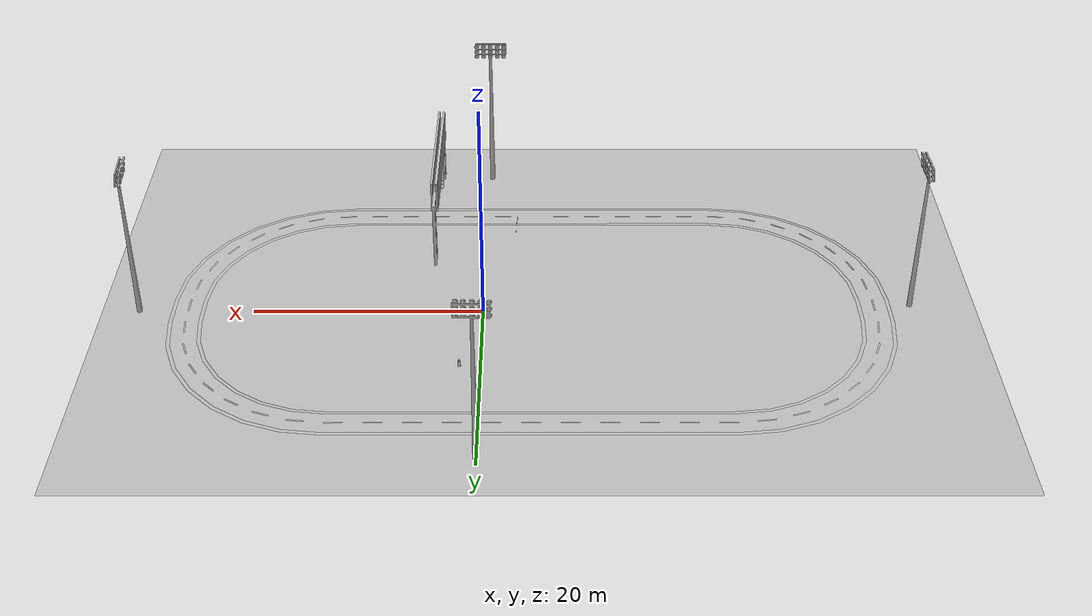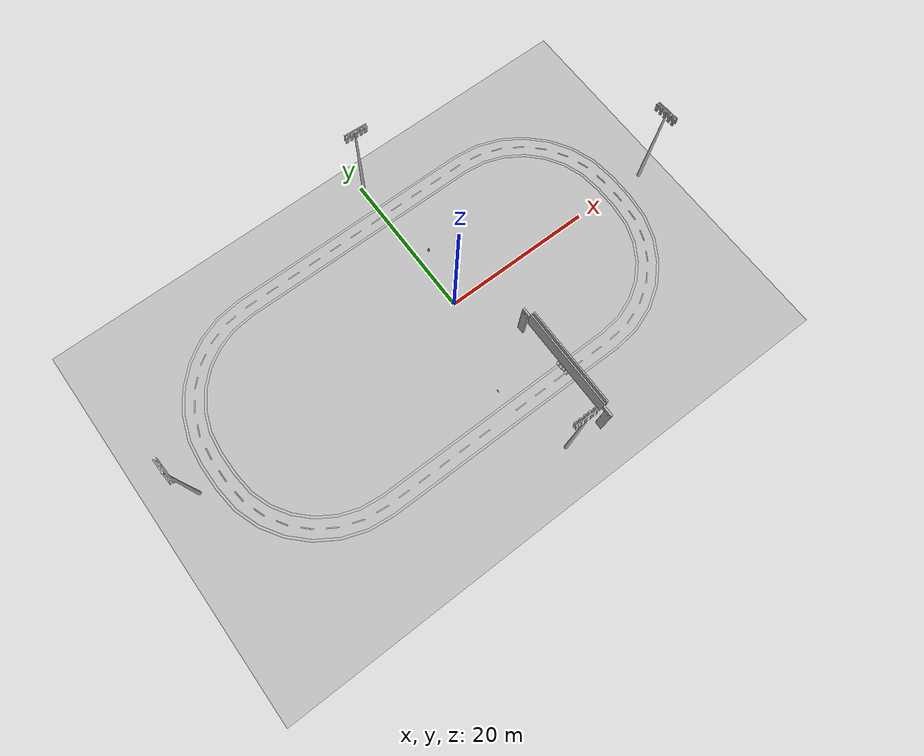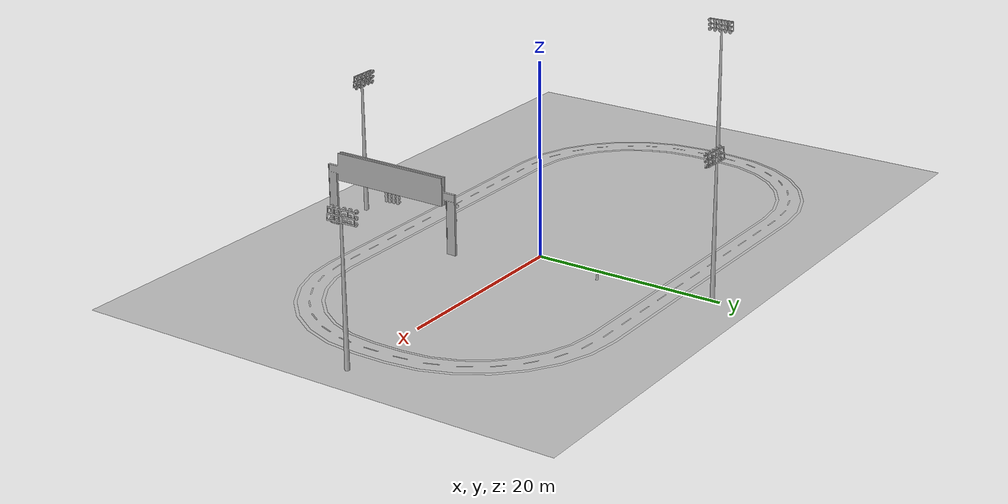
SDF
<sdf version="1.6">
 <world name="default">
  <gravity>0 0 -9.8</gravity>
  <magnetic_field>6e-06 2.3e-05 -4.2e-05</magnetic_field>
  <atmosphere type="adiabatic"/>
  <physics name="default_physics" default="0" type="ode">
   <max_step_size>0.001</max_step_size>
   <real_time_factor>1</real_time_factor>
   <real_time_update_rate>1000</real_time_update_rate>
  </physics>
  <scene><ambient>0.4 0.4 0.4 1</ambient><background>0.7 0.7 0.7 1</background><shadows>1</shadows></scene>
  <spherical_coordinates>
   <surface_model>EARTH_WGS84</surface_model>
   <latitude_deg>0</latitude_deg>
   <longitude_deg>0</longitude_deg>
   <elevation>0</elevation>
   <heading_deg>0</heading_deg>
  </spherical_coordinates>
  <model name="aws_robomaker_racetrack_TrafficCone_01_13">
   <include><uri>model://aws_robomaker_racetrack_TrafficCone_01</uri></include>
   <pose>1.78217 7.69024 0 0 -0 0</pose>
  </model>
  <model name="aws_robomaker_racetrack_Billboard_01">
   <include><uri>model://aws_robomaker_racetrack_Billboard_01</uri></include>
   <pose>4.32789 -14.8431 -2e-06 0 1e-06 1.56416</pose>
  </model>
  <model name="aws_robomaker_racetrack_RaceStartLight_01_00">
   <include><uri>model://aws_robomaker_racetrack_RaceStartLight_01</uri></include>
   <pose>4.13359 -14.1692 5.08709 0 -0 0</pose>
  </model>
  <model name="aws_robomaker_racetrack_RaceStartLight_01_01">
   <include><uri>model://aws_robomaker_racetrack_RaceStartLight_01</uri></include>
   <pose>4.14665 -14.6522 5.08709 0 -0 0</pose>
  </model>
  <model name="aws_robomaker_racetrack_RaceStartLight_01_02">
   <include><uri>model://aws_robomaker_racetrack_RaceStartLight_01</uri></include>
   <pose>4.21676 -15.0918 5.08709 0 -0 0</pose>
  </model>
  <model name="aws_robomaker_racetrack_RaceStartLight_01_03">
   <include><uri>model://aws_robomaker_racetrack_RaceStartLight_01</uri></include>
   <pose>4.17594 -15.5526 5.08709 0 -0 0</pose>
  </model>
  <model name="aws_robomaker_racetrack_StopSign_01_00">
   <include><uri>model://aws_robomaker_racetrack_StopSign_01</uri></include>
   <pose>-2.7487 -12.1054 0.000775 0.075944 0.005053 -1.56731</pose>
  </model>
  <model name="aws_robomaker_racetrack_Track_05_00">
   <include><uri>model://aws_robomaker_racetrack_Track_05</uri></include>
   <pose>0 0 0.02 0 -0 0</pose>
  </model>
  <model name="aws_robomaker_racetrack_Trackline_01_00">
   <include><uri>model://aws_robomaker_racetrack_Trackline_01</uri></include>
   <pose>-4.24539 0 0.102 0 -0 0</pose>
  </model>
  <model name="aws_robomaker_racetrack_Ground_01_00">
   <include><uri>model://aws_robomaker_racetrack_Ground_01</uri></include>
   <pose>-4.9 -2 0.05 0 -0 0</pose>
  </model>
  <model name="aws_robomaker_racetrack_Light_01_00">
   <include><uri>model://aws_robomaker_racetrack_Light_01</uri></include>
   <pose>-0.355802 -21.7691 0 0 -0 0</pose>
  </model>
  <model name="aws_robomaker_racetrack_Light_01_01">
   <include><uri>model://aws_robomaker_racetrack_Light_01</uri></include>
   <pose>0.041158 19.0887 0 0 -0 3.09146</pose>
  </model>
  <model name="aws_robomaker_racetrack_Light_01_02">
   <include><uri>model://aws_robomaker_racetrack_Light_01</uri></include>
   <pose>29.8469 -0.049215 0 0 -0 1.63215</pose>
  </model>
  <model name="aws_robomaker_racetrack_Light_01_03">
   <include><uri>model://aws_robomaker_racetrack_Light_01</uri></include>
   <pose>-37.2567 -0.808964 0 0 0 -1.52672</pose>
  </model>
  <model name="ground_plane">
   <pose>0 0 -1 0 -0 0</pose>
   <scale>1 1 1</scale>
   <link name="link">
    <pose>0 0 -1 0 -0 0</pose>
    <velocity>0 0 0 0 -0 0</velocity>
    <acceleration>0 0 0 0 -0 0</acceleration>
   </link>
  </model>
  <light name="sun" type="directional">
   <pose>0 0 10 0 0 0</pose>
   <diffuse>1 1 1 1</diffuse>
   <specular>1 1 1 1</specular>
   <attenuation>
    <range>1000</range>
    <constant>0.9</constant>
    <linear>0.01</linear>
    <quadratic>0.001</quadratic>
   </attenuation>
   <direction>-0.5 0.1 -0.9</direction>
  </light>
  <light name="sun2" type="directional">
   <pose>0 0 10 0 0 0</pose>
   <diffuse>1 1 1 1</diffuse>
   <specular>1 1 1 1</specular>
   <attenuation>
    <range>1000</range>
    <constant>0.9</constant>
    <linear>0.01</linear>
    <quadratic>0.001</quadratic>
   </attenuation>
   <direction>-0.5 0.1 -0.9</direction>
  </light>
  <light name="user_point_light_0" type="point">
   <pose>1.49278 -15.5363 1 0 -0 0</pose>
   <diffuse>0 0.98039 0 1</diffuse>
   <specular>0.1 0.1 0.1 1</specular>
   <attenuation>
    <range>0.3</range>
    <constant>0.02</constant>
    <linear>0.01</linear>
    <quadratic>0</quadratic>
   </attenuation>
   <cast_shadows>0</cast_shadows>
   <direction>0 0 -1</direction>
  </light>
  <light name="user_point_light_1" type="point">
   <pose>6.99411 -11.55 1 0 -0 0</pose>
   <diffuse>0 0.98039 0 1</diffuse>
   <specular>0.1 0.1 0.1 1</specular>
   <attenuation>
    <range>0.3</range>
    <constant>0.02</constant>
    <linear>0.01</linear>
    <quadratic>0</quadratic>
   </attenuation>
   <cast_shadows>0</cast_shadows>
   <direction>0 0 -1</direction>
  </light>
  <light name="user_point_light_2" type="point">
   <pose>5.65528 -14.8924 1 0 -0 0</pose>
   <diffuse>0 0.98039 0 1</diffuse>
   <specular>0.1 0.1 0.1 1</specular>
   <attenuation>
    <range>0.3</range>
    <constant>0.02</constant>
    <linear>0.01</linear>
    <quadratic>0</quadratic>
   </attenuation>
   <cast_shadows>0</cast_shadows>
   <direction>0 0 -1</direction>
  </light>
  <light name="user_point_light_3" type="point">
   <pose>3.6452 -17.3437 1 0 -0 0</pose>
   <diffuse>0 0.98039 0 1</diffuse>
   <specular>0.1 0.1 0.1 1</specular>
   <attenuation>
    <range>0.3</range>
    <constant>0.02</constant>
    <linear>0.01</linear>
    <quadratic>0</quadratic>
   </attenuation>
   <cast_shadows>0</cast_shadows>
   <direction>0 0 -1</direction>
  </light>
 </world>
</sdf>

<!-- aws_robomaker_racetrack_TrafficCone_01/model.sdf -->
<sdf version='1.6'>
  <model name='aws_TrafficCone_01'>
    <link name='body'>
      <pose frame=''>0 0 0 0 -0 0</pose>
      <self_collide>0</self_collide>
      <kinematic>0</kinematic>
      <gravity>1</gravity>
      <inertial>
        <mass>0.5</mass>
        <pose frame=''>0 0 0 0 -0 0</pose>
        <inertia>
          <ixx>1</ixx>
          <ixy>0</ixy>
          <ixz>0</ixz>
          <iyy>1</iyy>
          <iyz>0</iyz>
          <izz>1</izz>
        </inertia>
      </inertial>
      <visual name='visual'>
        <geometry>
          <mesh>
            <uri>file://models/aws_robomaker_racetrack_TrafficCone_01/meshes/aws_TrafficCone_01_visual.obj</uri>
            <scale>0.01 0.01 0.01</scale>
          </mesh>
        </geometry>
        <material>
          <shader type='pixel'>
            <normal_map>__default__</normal_map>
          </shader>
        </material>
        <pose frame=''>0 0 0 0 -0 0</pose>
        <cast_shadows>1</cast_shadows>
        <transparency>0</transparency>
        <meta>
          <layer>0</layer>
        </meta>
      </visual>
      <collision name='collision_0'>
        <laser_retro>0</laser_retro>
        <max_contacts>10</max_contacts>
        <pose frame=''>0 0 0 0 -0 0</pose>
        <geometry>
          <mesh>
            <uri>file://models/aws_robomaker_racetrack_TrafficCone_01/meshes/aws_TrafficCone_01_coliision.obj</uri>
            <scale>0.01 0.01 0.01</scale>
          </mesh>
        </geometry>
        <surface>
          <friction>
            <ode>
              <mu>1</mu>
              <mu2>1</mu2>
              <fdir1>0 0 0</fdir1>
              <slip1>0</slip1>
              <slip2>0</slip2>
            </ode>
            <torsional>
              <coefficient>1</coefficient>
              <patch_radius>0</patch_radius>
              <surface_radius>0</surface_radius>
              <use_patch_radius>1</use_patch_radius>
              <ode>
                <slip>0</slip>
              </ode>
            </torsional>
          </friction>
          <bounce>
            <restitution_coefficient>0</restitution_coefficient>
            <threshold>1e+06</threshold>
          </bounce>
          <contact>
            <collide_without_contact>0</collide_without_contact>
            <collide_without_contact_bitmask>1</collide_without_contact_bitmask>
            <collide_bitmask>1</collide_bitmask>
            <ode>
              <soft_cfm>0</soft_cfm>
              <soft_erp>0.2</soft_erp>
              <kp>1e+13</kp>
              <kd>1</kd>
              <max_vel>0.01</max_vel>
              <min_depth>0</min_depth>
            </ode>
            <bullet>
              <split_impulse>1</split_impulse>
              <split_impulse_penetration_threshold>-0.01</split_impulse_penetration_threshold>
              <soft_cfm>0</soft_cfm>
              <soft_erp>0.2</soft_erp>
              <kp>1e+13</kp>
              <kd>1</kd>
            </bullet>
          </contact>
        </surface>
      </collision>
    </link>
    <static>true</static>
  </model>
</sdf>

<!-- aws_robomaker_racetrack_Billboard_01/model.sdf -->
<sdf version='1.6'>
  <model name='aws_Billboard_01'>
    <link name='body'>
      <pose frame=''>0 0 0 0 -0 0</pose>
      <self_collide>0</self_collide>
      <kinematic>0</kinematic>
      <gravity>1</gravity>
      <inertial>
        <mass>1000</mass>
        <pose frame=''>0 0 0 0 -0 0</pose>
        <inertia>
          <ixx>1</ixx>
          <ixy>0</ixy>
          <ixz>0</ixz>
          <iyy>1</iyy>
          <iyz>0</iyz>
          <izz>1</izz>
        </inertia>
      </inertial>
      <visual name='visual'>
        <geometry>
          <mesh>
            <uri>models/aws_robomaker_racetrack_Billboard_01/meshes/aws_Billboard_01_visual.obj</uri>
            <scale>0.01 0.01 0.01</scale>
          </mesh>
        </geometry>
        <material>
          <shader type='pixel'>
            <normal_map>__default__</normal_map>
          </shader>
        </material>
        <pose frame=''>0 0 0 0 -0 0</pose>
        <cast_shadows>1</cast_shadows>
        <transparency>0</transparency>
        <meta>
          <layer>2</layer>
        </meta>
      </visual>

    </link>
    <static>true</static>
  </model>
</sdf>

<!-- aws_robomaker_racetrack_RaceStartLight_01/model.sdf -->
<sdf version='1.6'>
  <model name='aws_RaceStartLight_01'>
    <link name='body'>
      <pose frame=''>0 0 0 0 -0 0</pose>
      <inertial>
        <mass>1</mass>
        <pose frame=''>0 0 0 0 -0 0</pose>
        <inertia>
          <ixx>1</ixx>
          <ixy>0</ixy>
          <ixz>0</ixz>
          <iyy>1</iyy>
          <iyz>0</iyz>
          <izz>1</izz>
        </inertia>
      </inertial>
      <self_collide>0</self_collide>
      <kinematic>0</kinematic>
      <gravity>1</gravity>
      <visual name='visual'>
        <geometry>
          <mesh>
            <uri>file://models/aws_robomaker_racetrack_RaceStartLight_01/meshes/aws_RaceStartLight_01_visual.obj</uri>
            <scale>0.01 0.01 0.01</scale>
          </mesh>
        </geometry>
        <material>
          <shader type='pixel'>
            <normal_map>__default__</normal_map>
          </shader>
        </material>
        <pose frame=''>0 0 0 0 -0 0</pose>
        <cast_shadows>1</cast_shadows>
        <transparency>0</transparency>
        <meta>
          <layer>2</layer>
        </meta>
      </visual>
      <collision name='collision_1'>
        <laser_retro>0</laser_retro>
        <max_contacts>10</max_contacts>
        <pose frame=''>0 0 0 0 -0 0</pose>
        <geometry>
          <mesh>
            <uri>file://models/aws_robomaker_racetrack_RaceStartLight_01/meshes/aws_RaceStartLight_01_collision.obj</uri>
            <scale>0.01 0.01 0.01</scale>
          </mesh>
        </geometry>
        <surface>
          <friction>
            <ode>
              <mu>1</mu>
              <mu2>1</mu2>
              <fdir1>0 0 0</fdir1>
              <slip1>0</slip1>
              <slip2>0</slip2>
            </ode>
            <torsional>
              <coefficient>1</coefficient>
              <patch_radius>0</patch_radius>
              <surface_radius>0</surface_radius>
              <use_patch_radius>1</use_patch_radius>
              <ode>
                <slip>0</slip>
              </ode>
            </torsional>
          </friction>
          <bounce>
            <restitution_coefficient>0</restitution_coefficient>
            <threshold>1e+06</threshold>
          </bounce>
          <contact>
            <collide_without_contact>0</collide_without_contact>
            <collide_without_contact_bitmask>1</collide_without_contact_bitmask>
            <collide_bitmask>2</collide_bitmask>
            <ode>
              <soft_cfm>0</soft_cfm>
              <soft_erp>0.2</soft_erp>
              <kp>1e+13</kp>
              <kd>1</kd>
              <max_vel>0.01</max_vel>
              <min_depth>0</min_depth>
            </ode>
            <bullet>
              <split_impulse>1</split_impulse>
              <split_impulse_penetration_threshold>-0.01</split_impulse_penetration_threshold>
              <soft_cfm>0</soft_cfm>
              <soft_erp>0.2</soft_erp>
              <kp>1e+13</kp>
              <kd>1</kd>
            </bullet>
          </contact>
        </surface>
      </collision>
    </link>
    <static>1</static>
    <allow_auto_disable>1</allow_auto_disable>
  </model>
</sdf>

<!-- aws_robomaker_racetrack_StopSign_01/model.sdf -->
<sdf version='1.6'>
  <model name='aws_StopSign_01'>
    <link name='body'>
      <pose frame=''>0 0 0 0 -0 0</pose>
      <self_collide>0</self_collide>
      <kinematic>0</kinematic>
      <gravity>1</gravity>
      <inertial>
        <mass>2</mass>
        <pose frame=''>0 0 0 0 -0 0</pose>
        <inertia>
          <ixx>1</ixx>
          <ixy>0</ixy>
          <ixz>0</ixz>
          <iyy>1</iyy>
          <iyz>0</iyz>
          <izz>1</izz>
        </inertia>
      </inertial>
      <visual name='visual'>
        <geometry>
          <mesh>
            <uri>file://models/aws_robomaker_racetrack_StopSign_01/meshes/aws_StopSign_01_visual.obj</uri>
            <scale>0.01 0.01 0.01</scale>
          </mesh>
        </geometry>
        <material>
          <shader type='pixel'>
            <normal_map>__default__</normal_map>
          </shader>
        </material>
        <pose frame=''>0 0 0 0 -0 0</pose>
        <cast_shadows>1</cast_shadows>
        <transparency>0</transparency>
        <meta>
          <layer>0</layer>
        </meta>
      </visual>
      <collision name='collision_0'>
        <laser_retro>0</laser_retro>
        <max_contacts>10</max_contacts>
        <pose frame=''>0 0 0 0 -0 0</pose>
        <geometry>
          <mesh>
            <uri>file://models/aws_robomaker_racetrack_StopSign_01/meshes/aws_StopSign_01_collision.obj</uri>
            <scale>0.01 0.01 0.01</scale>
          </mesh>
        </geometry>
        <surface>
          <friction>
            <ode>
              <mu>1</mu>
              <mu2>1</mu2>
              <fdir1>0 0 0</fdir1>
              <slip1>0</slip1>
              <slip2>0</slip2>
            </ode>
            <torsional>
              <coefficient>1</coefficient>
              <patch_radius>0</patch_radius>
              <surface_radius>0</surface_radius>
              <use_patch_radius>1</use_patch_radius>
              <ode>
                <slip>0</slip>
              </ode>
            </torsional>
          </friction>
          <bounce>
            <restitution_coefficient>0</restitution_coefficient>
            <threshold>1e+06</threshold>
          </bounce>
          <contact>
            <collide_without_contact>0</collide_without_contact>
            <collide_without_contact_bitmask>1</collide_without_contact_bitmask>
            <collide_bitmask>1</collide_bitmask>
            <ode>
              <soft_cfm>0</soft_cfm>
              <soft_erp>0.2</soft_erp>
              <kp>1e+13</kp>
              <kd>1</kd>
              <max_vel>0.01</max_vel>
              <min_depth>0</min_depth>
            </ode>
            <bullet>
              <split_impulse>1</split_impulse>
              <split_impulse_penetration_threshold>-0.01</split_impulse_penetration_threshold>
              <soft_cfm>0</soft_cfm>
              <soft_erp>0.2</soft_erp>
              <kp>1e+13</kp>
              <kd>1</kd>
            </bullet>
          </contact>
        </surface>
      </collision>
    </link>
    <static>true</static>
  </model>
</sdf>

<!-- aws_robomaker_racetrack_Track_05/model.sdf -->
<sdf version='1.6'>

  <model name='aws_Track_05_border'>

     <link name='body_border'>
      <pose frame=''>0 0 0 0 -0 0</pose>
      <self_collide>0</self_collide>
      <kinematic>0</kinematic>
      <gravity>1</gravity>
      <inertial>
        <mass>1000</mass>
        <pose frame=''>0 0 0 0 -0 0</pose>
        <inertia>
          <ixx>1</ixx>
          <ixy>0</ixy>
          <ixz>0</ixz>
          <iyy>1</iyy>
          <iyz>0</iyz>
          <izz>1</izz>
        </inertia>
      </inertial>
      <visual name='visual'>
        <geometry>
          <mesh>
            <uri>file://models/aws_robomaker_racetrack_Track_05/meshes/aws_Track_05_visual_border.obj</uri>
            <scale>1 1 1</scale>
          </mesh>
        </geometry>
        <material>
          <shader type='pixel'>
            <normal_map>__default__</normal_map>
          </shader>
        </material>
        <pose frame=''>0 0 0 0 -0 0</pose>
        <cast_shadows>1</cast_shadows>
        <transparency>0</transparency>
        <meta>
          <layer>0</layer>
        </meta>
      </visual>

       <collision name='collision_0'>
        <laser_retro>0</laser_retro>
        <max_contacts>10</max_contacts>
        <pose frame=''>0 0 0 0 -0 0</pose>
        <geometry>
          <mesh>
            <uri>file://models/aws_robomaker_racetrack_Track_05/meshes/aws_Track_05_visual_border.obj</uri>
            <scale>1 1 1</scale>
          </mesh>
        </geometry>
        <surface>
          <friction>
            <ode>
              <mu>1</mu>
              <mu2>1</mu2>
              <fdir1>0 0 0</fdir1>
              <slip1>0</slip1>
              <slip2>0</slip2>
            </ode>
            <torsional>
              <coefficient>1</coefficient>
              <patch_radius>0</patch_radius>
              <surface_radius>0</surface_radius>
              <use_patch_radius>1</use_patch_radius>
              <ode>
                <slip>0</slip>
              </ode>
            </torsional>
          </friction>
          <bounce>
            <restitution_coefficient>0</restitution_coefficient>
            <threshold>1e+06</threshold>
          </bounce>
          <contact>
            <collide_without_contact>0</collide_without_contact>
            <collide_without_contact_bitmask>1</collide_without_contact_bitmask>
            <collide_bitmask>1</collide_bitmask>
            <ode>
              <soft_cfm>0</soft_cfm>
              <soft_erp>0.2</soft_erp>
              <kp>1e+13</kp>
              <kd>1</kd>
              <max_vel>0.01</max_vel>
              <min_depth>0</min_depth>
            </ode>
            <bullet>
              <split_impulse>1</split_impulse>
              <split_impulse_penetration_threshold>-0.01</split_impulse_penetration_threshold>
              <soft_cfm>0</soft_cfm>
              <soft_erp>0.2</soft_erp>
              <kp>1e+13</kp>
              <kd>1</kd>
            </bullet>
          </contact>
        </surface>
      </collision>

    </link>
  </model>

   <model name='aws_Track_05_border'>

     <link name='body_border'>
      <pose frame=''>0 0 0 0 -0 0</pose>
      <self_collide>0</self_collide>
      <kinematic>0</kinematic>
      <gravity>1</gravity>
      <inertial>
        <mass>1000</mass>
        <pose frame=''>0 0 0 0 -0 0</pose>
        <inertia>
          <ixx>1</ixx>
          <ixy>0</ixy>
          <ixz>0</ixz>
          <iyy>1</iyy>
          <iyz>0</iyz>
          <izz>1</izz>
        </inertia>
      </inertial>
      <visual name='visual'>
        <geometry>
          <mesh>
            <uri>file://models/aws_robomaker_racetrack_Track_05/meshes/aws_Track_05_visual_track.obj</uri>
            <scale>1 1 1</scale>
          </mesh>
        </geometry>
        <material>
          <shader type='pixel'>
            <normal_map>__default__</normal_map>
          </shader>
        </material>
        <pose frame=''>0 0 0 0 -0 0</pose>
        <cast_shadows>1</cast_shadows>
        <transparency>0</transparency>
        <meta>
          <layer>0</layer>
        </meta>
      </visual>
       <collision name='collision_0'>
        <laser_retro>0</laser_retro>
        <max_contacts>10</max_contacts>
        <pose frame=''>0 0 0 0 -0 0</pose>
        <geometry>
          <mesh>
            <uri>file://models/aws_robomaker_racetrack_Track_05/meshes/aws_Track_05_visual_track.obj</uri>
            <scale>1 1 1</scale>
          </mesh>
        </geometry>
        <surface>
          <friction>
            <ode>
              <mu>1</mu>
              <mu2>1</mu2>
              <fdir1>0 0 0</fdir1>
              <slip1>0</slip1>
              <slip2>0</slip2>
            </ode>
            <torsional>
              <coefficient>1</coefficient>
              <patch_radius>0</patch_radius>
              <surface_radius>0</surface_radius>
              <use_patch_radius>1</use_patch_radius>
              <ode>
                <slip>0</slip>
              </ode>
            </torsional>
          </friction>
          <bounce>
            <restitution_coefficient>0</restitution_coefficient>
            <threshold>1e+06</threshold>
          </bounce>
          <contact>
            <collide_without_contact>0</collide_without_contact>
            <collide_without_contact_bitmask>1</collide_without_contact_bitmask>
            <collide_bitmask>1</collide_bitmask>
            <ode>
              <soft_cfm>0</soft_cfm>
              <soft_erp>0.2</soft_erp>
              <kp>1e+13</kp>
              <kd>1</kd>
              <max_vel>0.01</max_vel>
              <min_depth>0</min_depth>
            </ode>
            <bullet>
              <split_impulse>1</split_impulse>
              <split_impulse_penetration_threshold>-0.01</split_impulse_penetration_threshold>
              <soft_cfm>0</soft_cfm>
              <soft_erp>0.2</soft_erp>
              <kp>1e+13</kp>
              <kd>1</kd>
            </bullet>
          </contact>
        </surface>
      </collision>
    </link>
  </model>
</sdf>

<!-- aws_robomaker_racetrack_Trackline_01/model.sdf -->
<sdf version='1.6'>
  <model name='aws_Trackline_01'>
    <link name='body'>
      <pose frame=''>0 0 0 0 -0 0</pose>
      <inertial>
        <mass>0.5</mass>
        <pose frame=''>0 0 0 0 -0 0</pose>
        <inertia>
          <ixx>1</ixx>
          <ixy>0</ixy>
          <ixz>0</ixz>
          <iyy>1</iyy>
          <iyz>0</iyz>
          <izz>1</izz>
        </inertia>
      </inertial>
      <self_collide>0</self_collide>
      <kinematic>0</kinematic>
      <gravity>1</gravity>
      <visual name='visual'>
        <geometry>
          <mesh>
            <uri>file://models/aws_robomaker_racetrack_Trackline_01/meshes/aws_Trackline_01_visual.obj</uri>
            <scale>0.01 0.01 0.01</scale>
          </mesh>
        </geometry>
        <material>
          <shader type='pixel'>
            <normal_map>__default__</normal_map>
          </shader>
        </material>
        <pose frame=''>0 0 0 0 -0 0</pose>
        <cast_shadows>1</cast_shadows>
        <transparency>0</transparency>
        <meta>
          <layer>0</layer>
        </meta>
      </visual>

    </link>
    <static>1</static>
  </model>
</sdf>

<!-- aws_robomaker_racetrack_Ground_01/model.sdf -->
<sdf version='1.6'>
  <model name='aws_Ground_01'>
    <link name='body'>
      <pose frame=''>0 0 0 0 -0 0</pose>
      <self_collide>0</self_collide>
      <kinematic>0</kinematic>
      <gravity>1</gravity>
      <inertial>
        <mass>10000</mass>
        <pose frame=''>0 0 0 0 -0 0</pose>
        <inertia>
          <ixx>0</ixx>
          <ixy>0</ixy>
          <ixz>0</ixz>
          <iyy>0</iyy>
          <iyz>0</iyz>
          <izz>0</izz>
        </inertia>
      </inertial>
      <visual name='visual'>
        <geometry>
          <mesh>
            <uri>file://models/aws_robomaker_racetrack_Ground_01/meshes/aws_Ground_01_visual.obj</uri>
            <scale>0.00090 0.0006 0.002</scale>
          </mesh>
        </geometry>
        <material>
          <shader type='pixel'>
            <normal_map>__default__</normal_map>
          </shader>
        </material>
        <pose frame=''>0 0 0 0 -0 0</pose>
        <cast_shadows>1</cast_shadows>
        <transparency>0</transparency>
        <meta>
          <layer>0</layer>
        </meta>
      </visual>
      <collision name='collision_0'>
        <laser_retro>0</laser_retro>
        <max_contacts>10</max_contacts>
        <pose frame=''>0 0 0 0 0 0</pose>
        <geometry>
          <mesh>
            <uri>file://models/aws_robomaker_racetrack_Ground_01/meshes/aws_Ground_01_collision.obj</uri>
            <scale>0.002 0.002 0.002</scale>
          </mesh>
        </geometry>
        <surface>
          <friction>
            <ode>
              <mu>1</mu>
              <mu2>1</mu2>
              <fdir1>0 0 0</fdir1>
              <slip1>0</slip1>
              <slip2>0</slip2>
            </ode>
            <torsional>
              <coefficient>1</coefficient>
              <patch_radius>0</patch_radius>
              <surface_radius>0</surface_radius>
              <use_patch_radius>1</use_patch_radius>
              <ode>
                <slip>0</slip>
              </ode>
            </torsional>
          </friction>
          <bounce>
            <restitution_coefficient>0</restitution_coefficient>
            <threshold>1e+06</threshold>
          </bounce>
          <contact>
            <collide_without_contact>0</collide_without_contact>
            <collide_without_contact_bitmask>1</collide_without_contact_bitmask>
            <collide_bitmask>0xffff</collide_bitmask>
            <ode>
              <soft_cfm>0</soft_cfm>
              <soft_erp>0.2</soft_erp>
              <kp>1e+13</kp>
              <kd>1</kd>
              <max_vel>0.01</max_vel>
              <min_depth>0</min_depth>
            </ode>
            <bullet>
              <split_impulse>1</split_impulse>
              <split_impulse_penetration_threshold>-0.01</split_impulse_penetration_threshold>
              <soft_cfm>0</soft_cfm>
              <soft_erp>0.2</soft_erp>
              <kp>1e+13</kp>
              <kd>1</kd>
            </bullet>
          </contact>
        </surface>
      </collision>
    </link>
    <static>1</static>
  </model>
</sdf>

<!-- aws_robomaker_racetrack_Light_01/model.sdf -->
<sdf version='1.6'>
  <model name='aws_Light_01'>
    <link name='body'>
      <pose frame=''>0 0 0 0 -0 0</pose>
      <self_collide>0</self_collide>
      <kinematic>0</kinematic>
      <gravity>1</gravity>
      <inertial>
        <mass>100</mass>
        <pose frame=''>0 0 0 0 -0 0</pose>
        <inertia>
          <ixx>1</ixx>
          <ixy>0</ixy>
          <ixz>0</ixz>
          <iyy>1</iyy>
          <iyz>0</iyz>
          <izz>1</izz>
        </inertia>
      </inertial>
      <visual name='visual'>
        <geometry>
          <mesh>
            <uri>file://models/aws_robomaker_racetrack_Light_01/meshes/aws_Light_01_visual.obj</uri>
            <scale>0.01 0.01 0.01</scale>
          </mesh>
        </geometry>
        <material>
          <shader type='pixel'>
            <normal_map>__default__</normal_map>
          </shader>
        </material>
        <pose frame=''>0 0 0 0 -0 0</pose>
        <cast_shadows>1</cast_shadows>
        <transparency>0</transparency>
        <meta>
          <layer>0</layer>
        </meta>
      </visual>
      <collision name='collision_0'>
        <laser_retro>0</laser_retro>
        <max_contacts>10</max_contacts>
        <pose frame=''>0 0 0 0 -0 0</pose>
        <geometry>
          <mesh>
            <uri>file://models/aws_robomaker_racetrack_Light_01/meshes/aws_Light_01_collision.obj</uri>
            <scale>0.01 0.01 0.01</scale>
          </mesh>
        </geometry>
        <surface>
          <friction>
            <ode>
              <mu>1</mu>
              <mu2>1</mu2>
              <fdir1>0 0 0</fdir1>
              <slip1>0</slip1>
              <slip2>0</slip2>
            </ode>
            <torsional>
              <coefficient>1</coefficient>
              <patch_radius>0</patch_radius>
              <surface_radius>0</surface_radius>
              <use_patch_radius>1</use_patch_radius>
              <ode>
                <slip>0</slip>
              </ode>
            </torsional>
          </friction>
          <bounce>
            <restitution_coefficient>0</restitution_coefficient>
            <threshold>1e+06</threshold>
          </bounce>
          <contact>
            <collide_without_contact>0</collide_without_contact>
            <collide_without_contact_bitmask>1</collide_without_contact_bitmask>
            <collide_bitmask>1</collide_bitmask>
            <ode>
              <soft_cfm>0</soft_cfm>
              <soft_erp>0.2</soft_erp>
              <kp>1e+13</kp>
              <kd>1</kd>
              <max_vel>0.01</max_vel>
              <min_depth>0</min_depth>
            </ode>
            <bullet>
              <split_impulse>1</split_impulse>
              <split_impulse_penetration_threshold>-0.01</split_impulse_penetration_threshold>
              <soft_cfm>0</soft_cfm>
              <soft_erp>0.2</soft_erp>
              <kp>1e+13</kp>
              <kd>1</kd>
            </bullet>
          </contact>
        </surface>
      </collision>
    </link>
    <static>1</static>
  </model>
</sdf>
